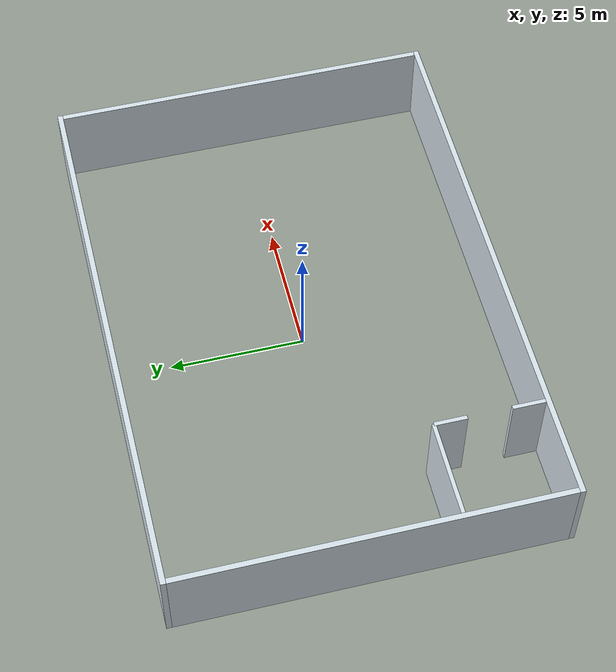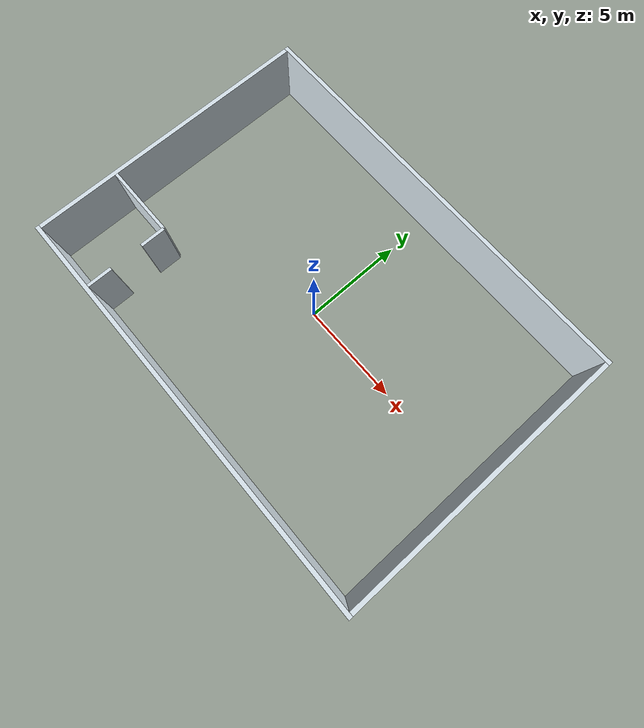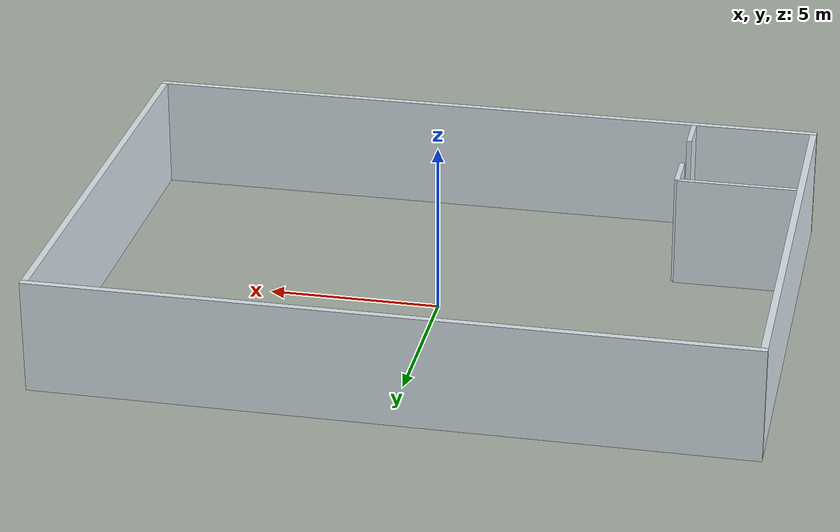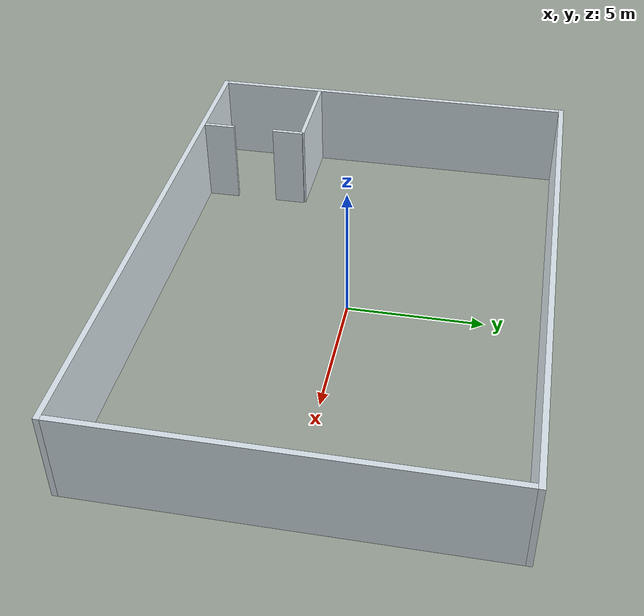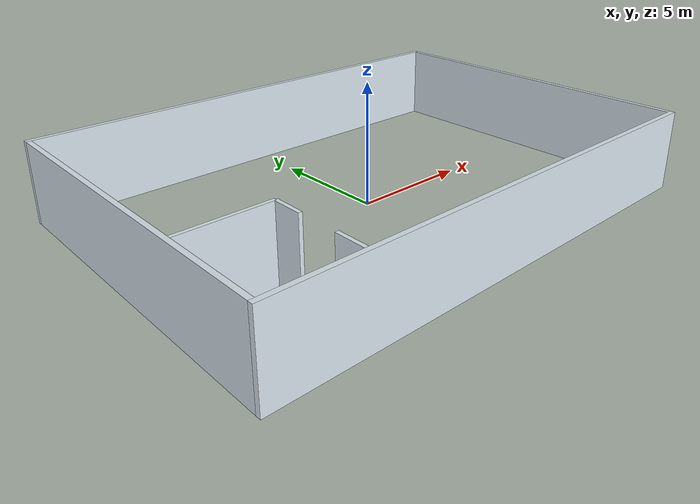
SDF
<sdf version="1.6">
 <world name="cleanroom">
  <model name="wall_north">
   <static>true</static>
   <link name="body">
    <collision name="body">
     <pose>0 7.1 1.65 0 0 0</pose>
     <geometry><box><size>20.4 0.2 3.3</size></box></geometry>
    </collision>
    <visual name="body">
     <pose>0 7.1 1.65 0 0 0</pose>
     <geometry><box><size>20.4 0.2 3.3</size></box></geometry>
     <material><ambient>0.85 0.9 0.93 1</ambient><diffuse>0.85 0.9 0.93 1</diffuse></material>
     <cast_shadows>false</cast_shadows>
    </visual>
   </link>
  </model>
  <model name="wall_south">
   <static>true</static>
   <link name="body">
    <collision name="body">
     <pose>0 -7.1 1.65 0 0 0</pose>
     <geometry><box><size>20.4 0.2 3.3</size></box></geometry>
    </collision>
    <visual name="body">
     <pose>0 -7.1 1.65 0 0 0</pose>
     <geometry><box><size>20.4 0.2 3.3</size></box></geometry>
     <material><ambient>0.85 0.9 0.93 1</ambient><diffuse>0.85 0.9 0.93 1</diffuse></material>
     <cast_shadows>false</cast_shadows>
    </visual>
   </link>
  </model>
  <model name="wall_east">
   <static>true</static>
   <link name="body">
    <collision name="body">
     <pose>10.1 0 1.65 0 0 0</pose>
     <geometry><box><size>0.2 14 3.3</size></box></geometry>
    </collision>
    <visual name="body">
     <pose>10.1 0 1.65 0 0 0</pose>
     <geometry><box><size>0.2 14 3.3</size></box></geometry>
     <material><ambient>0.85 0.9 0.93 1</ambient><diffuse>0.85 0.9 0.93 1</diffuse></material>
     <cast_shadows>false</cast_shadows>
    </visual>
   </link>
  </model>
  <model name="wall_west">
   <static>true</static>
   <link name="body">
    <collision name="body">
     <pose>-10.1 0 1.65 0 0 0</pose>
     <geometry><box><size>0.2 14 3.3</size></box></geometry>
    </collision>
    <visual name="body">
     <pose>-10.1 0 1.65 0 0 0</pose>
     <geometry><box><size>0.2 14 3.3</size></box></geometry>
     <material><ambient>0.85 0.9 0.93 1</ambient><diffuse>0.85 0.9 0.93 1</diffuse></material>
     <cast_shadows>false</cast_shadows>
    </visual>
   </link>
  </model>
  <model name="airlock_north">
   <static>true</static>
   <link name="body">
    <collision name="body">
     <pose>-8.25 -3 1.65 0 0 0</pose>
     <geometry><box><size>3.5 0.15 3.3</size></box></geometry>
    </collision>
    <visual name="body">
     <pose>-8.25 -3 1.65 0 0 0</pose>
     <geometry><box><size>3.5 0.15 3.3</size></box></geometry>
     <material><ambient>0.85 0.9 0.93 1</ambient><diffuse>0.85 0.9 0.93 1</diffuse></material>
     <cast_shadows>false</cast_shadows>
    </visual>
   </link>
  </model>
  <model name="airlock_door_south">
   <static>true</static>
   <link name="body">
    <collision name="body">
     <pose>-6.5 -6.4 1.65 0 0 0</pose>
     <geometry><box><size>0.15 1.2 3.3</size></box></geometry>
    </collision>
    <visual name="body">
     <pose>-6.5 -6.4 1.65 0 0 0</pose>
     <geometry><box><size>0.15 1.2 3.3</size></box></geometry>
     <material><ambient>0.85 0.9 0.93 1</ambient><diffuse>0.85 0.9 0.93 1</diffuse></material>
     <cast_shadows>false</cast_shadows>
    </visual>
   </link>
  </model>
  <model name="airlock_door_north">
   <static>true</static>
   <link name="body">
    <collision name="body">
     <pose>-6.5 -3.6 1.65 0 0 0</pose>
     <geometry><box><size>0.15 1.2 3.3</size></box></geometry>
    </collision>
    <visual name="body">
     <pose>-6.5 -3.6 1.65 0 0 0</pose>
     <geometry><box><size>0.15 1.2 3.3</size></box></geometry>
     <material><ambient>0.85 0.9 0.93 1</ambient><diffuse>0.85 0.9 0.93 1</diffuse></material>
     <cast_shadows>false</cast_shadows>
    </visual>
   </link>
  </model>
 </world>
</sdf>
